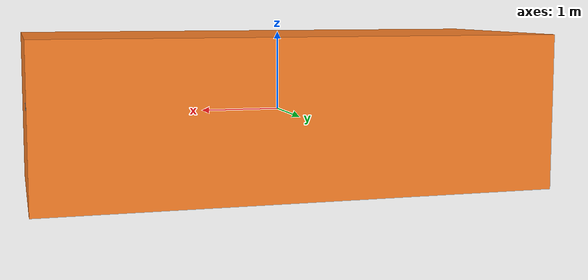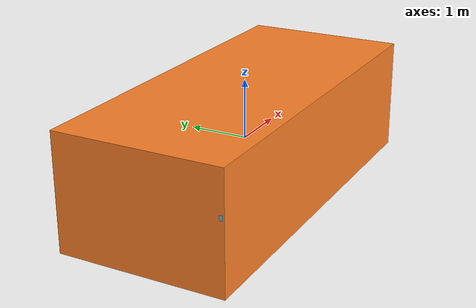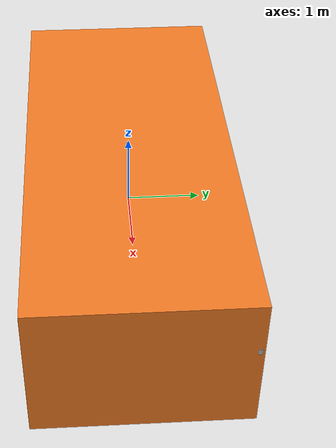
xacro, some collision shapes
<?xml version="1.0"?>
<robot name="cybertruck" xmlns:xacro="http://ros.org/wiki/xacro">

  <xacro:arg name="gpu" default="false"/>
  <xacro:property name="gpu" value="$(arg gpu)" />

  <xacro:property name="robot_namespace" value="/steer_bot"/>

  <xacro:include filename="$(find truck_simulation)/urdf/materials.xacro"/>
  <xacro:include filename="$(find truck_simulation)/urdf/inertials.xacro"/>

  <!-- Gazebo plugins -->
  <gazebo>
    <!-- Load ros_control plugin using the steer_bot_hardware_gazebo
    implementation of the hardware_interface::RobotHW -->
    <plugin name="gazebo_ros_control" filename="libgazebo_ros_control.so">
      <robotNamespace>${robot_namespace}</robotNamespace>
      <robotSimType>steer_bot_hardware_gazebo/SteerBotHardwareGazebo</robotSimType>
      <legacyModeNS>false</legacyModeNS>
    </plugin>
  </gazebo>

  <!-- ****************** ROBOT CONSTANTS *******************************  -->
  <!-- Define the size of the robot's main chassis in meters -->
  <xacro:property name="base_width" value="6.42"/>
  <xacro:property name="base_length" value="2.8"/>
  <xacro:property name="base_height" value="0.96"/>
  <xacro:property name="base_mass" value="5000" />

  <!-- Math constants -->
  <xacro:property name="deg_to_rad" value="0.01745329251994329577"/>

  <!-- Steering link dimensions -->
  <xacro:property name="steer_radius" value="0.05" />
  <xacro:property name="steer_thickness" value="0.02" />
  <xacro:property name="steer_mass" value="10" />

  <!-- Axle positions -->
  <xacro:property name="axle_offset" value="0.05" />
  <xacro:property name="steer_offset" value="0.02" />
  <xacro:property name="steer_height" value="${0.1 + steer_offset}" />

  <!-- Wheel link dimensions -->
  <xacro:property name="wheel_radius" value="0.48" />
  <xacro:property name="wheel_thickness" value="0.54" />
  <xacro:property name="wheel_base" value="2.12" />
  <xacro:property name="wheel_mass" value="500" />

  <!-- Properties -->
  <xacro:property name="steer_effort" value="10.0"/>
  <xacro:property name="steer_velocity" value="5.0"/>
  <xacro:property name="steer_limit_deg" value="45.0"/>

  <link name="base_link">
      <visual>
        <origin xyz="0 0 0" rpy="0 0 1.5707963267949"/>
        <geometry>
          <mesh filename="package://truck_simulation/meshes/cybertruck.stl" scale="0.001 0.001 0.001"/>
        </geometry>
        <material name="Orange"/>
      </visual>

      <collision>
        <geometry>
          <box size="${base_width} ${base_length} ${base_height + 1.0}"/>
        </geometry>
      </collision>

      <xacro:box_inertia m="6000.0" w="${base_width}" d="${base_length}" h="${base_height}"/>
  </link>

  <!-- Colour -->
  <gazebo reference="base_link">
    <material>Gazebo/Orange</material>
  </gazebo>

<!-- Front steer and rear wheel joints required for ackermann_steering_controller -->
  <link name="front_steer_link">
    <visual>
      <origin xyz="0 0 0" rpy="0 0 0"/>
      <geometry>
        <cylinder radius="${steer_radius}" length="${steer_thickness}"/>
      </geometry>
      <material name="Red" />
    </visual>
    <collision>
      <origin xyz="0 0 0" rpy="0 0 0"/>
      <geometry>
        <cylinder radius="${steer_radius}" length="${steer_thickness}"/>
      </geometry>
    </collision>
    <xacro:solid_cylinder_inertial
        rpy="0 0 0" xyz="0 0 0"
        mass="${steer_mass}"
        radius="${steer_radius}" length="${steer_thickness}" />
  </link>

  <joint name="front_steer_joint" type="revolute">
    <parent link="base_link"/>
    <child link="front_steer_link"/>
    <origin xyz="${wheel_base} 0 ${steer_height}" rpy="0 0 0"/>
    <axis xyz="0 0 1"/>
    <limit effort="${steer_effort}"
           lower="${-180.0 * deg_to_rad}" upper="${180.0 * deg_to_rad}"
           velocity="${steer_velocity}"/>
  </joint>

  <transmission name="front_steer_joint_trans">
    <type>transmission_interface/SimpleTransmission</type>
    <actuator name="front_steer_joint_motor">
      <mechanicalReduction>1</mechanicalReduction>
      <hardwareInterface>hardware_interface/PositionJointInterface</hardwareInterface>
    </actuator>
    <joint name="front_steer_joint">
      <hardwareInterface>hardware_interface/PositionJointInterface</hardwareInterface>
    </joint>
  </transmission>

  <gazebo reference="front_steer_link">
    <material>Gazebo/Red</material>
  </gazebo>

<!-- Steerable front right -->
  <link name="front_right_steer_link">
    <visual>
      <origin xyz="0 0 0" rpy="0 0 0"/>
      <geometry>
        <cylinder radius="${steer_radius}" length="${steer_thickness}"/>
      </geometry>
      <material name="blue" />
    </visual>
    <collision>
      <origin xyz="0 0 0" rpy="0 0 0"/>
      <geometry>
        <cylinder radius="${steer_radius}" length="${steer_thickness}"/>
      </geometry>
    </collision>
    <xacro:solid_cylinder_inertial
        rpy="0 0 0" xyz="0 0 0"
        mass="${steer_mass}"
        radius="${steer_radius}" length="${steer_thickness}" />
  </link>

  <joint name="front_right_steer_joint" type="revolute">
    <parent link="base_link"/>
    <child link="front_right_steer_link"/>
    <origin xyz="${wheel_base} -0.75 ${steer_height}" rpy="0 0 0"/>
    <origin xyz="${wheel_base} 0 ${steer_height}" rpy="0 0 0"/>

    <axis xyz="0 0 1"/>
    <limit effort="${steer_effort}"
          lower="${steer_limit_deg * deg_to_rad * -1.0}" upper="${steer_limit_deg * deg_to_rad}"
          velocity="${steer_velocity}"/>
  </joint>

  <link name="front_right_wheel_link">
      <visual>
          <origin xyz="0 0 0" rpy="0 0 ${90 * deg_to_rad}"/>
        <geometry>
          <mesh filename="package://truck_simulation/meshes/wheel1.stl" scale="0.001 0.001 0.001"/>
        </geometry>
        <material name="Black" />
      </visual>
      <collision>
          <origin xyz="0 0 0" rpy="0 0 ${90 * deg_to_rad}"/>
        <geometry>
          <mesh filename="package://truck_simulation/meshes/wheel1.stl" scale="0.001 0.001 0.001"/>
        </geometry>
      </collision>
  </link>

  <joint name="front_right_wheel_joint" type="continuous">
    <parent link="front_right_steer_link"/>
    <child link="front_right_wheel_link"/>
    <origin xyz="0 -0.25 -0.45" rpy="0 0 0"/>
    <axis xyz="0 0 1"/>
  </joint>

  <transmission name="front_right_steer_joint_trans">
    <type>transmission_interface/SimpleTransmission</type>
    <actuator name="front_right_steer_joint_motor">
      <mechanicalReduction>1</mechanicalReduction>
      <hardwareInterface>hardware_interface/PositionJointInterface</hardwareInterface>
    </actuator>
    <joint name="front_right_steer_joint">
      <hardwareInterface>hardware_interface/PositionJointInterface</hardwareInterface>
    </joint>
  </transmission>

  <transmission name="front_right_wheel_joint_trans">
    <type>transmission_interface/SimpleTransmission</type>
    <actuator name="front_right_wheel_joint_motor">
      <mechanicalReduction>1</mechanicalReduction>
      <hardwareInterface>hardware_interface/VelocityJointInterface</hardwareInterface>
    </actuator>
    <joint name="front_right_wheel_joint">
      <hardwareInterface>hardware_interface/VelocityJointInterface</hardwareInterface>
    </joint>
  </transmission>

  <gazebo reference="front_right_wheel_link">
    <material>Gazebo/Black</material>
  </gazebo>

  <gazebo reference="front_right_steer_link">
    <material>Gazebo/Blue</material>
  </gazebo>

<!-- Steerable front left -->
  <link name="front_left_steer_link">
    <visual>
        <origin xyz="0 0 0" rpy="0 0 1.5707963267949"/>
      <geometry>
        <cylinder radius="${steer_radius}" length="${steer_thickness}"/>
      </geometry>
      <material name="blue" />
    </visual>
    <collision>
        <origin xyz="0 0 0" rpy="0 0 1.5707963267949"/>
      <geometry>
        <cylinder radius="${steer_radius}" length="${steer_thickness}"/>
      </geometry>
    </collision>
    <xacro:solid_cylinder_inertial
        rpy="0 0 0" xyz="0 0 0"
        mass="${steer_mass}"
        radius="${steer_radius}" length="${steer_thickness}" />
  </link>

  <joint name="front_left_steer_joint" type="revolute">
    <parent link="base_link"/>
    <child link="front_left_steer_link"/>
    <origin xyz="${wheel_base} 0.75 ${steer_height}" rpy="0 0 0"/>
    <origin xyz="${wheel_base} 0 ${steer_height}" rpy="0 0 0"/>

    <axis xyz="0 0 1"/>
    <limit effort="${steer_effort}"
          lower="${steer_limit_deg * deg_to_rad * -1.0}" upper="${steer_limit_deg * deg_to_rad}"
          velocity="${steer_velocity}"/>
  </joint>

  <link name="front_left_wheel_link">
      <visual>
        <origin xyz="0 0 0" rpy="0 0 ${-90 * deg_to_rad}"/>
        <geometry>
          <mesh filename="package://truck_simulation/meshes/wheel1.stl" scale="0.001 0.001 0.001"/>
        </geometry>
        <material name="Black" />
      </visual>
      <collision>
        <origin xyz="0 0 0" rpy="0 0 ${-90 * deg_to_rad}"/>
        <geometry>
          <mesh filename="package://truck_simulation/meshes/wheel1.stl" scale="0.001 0.001 0.001"/>
        </geometry>
      </collision>
  </link>

  <joint name="front_left_wheel_joint" type="continuous">
    <parent link="front_left_steer_link"/>
    <child link="front_left_wheel_link"/>
    <origin xyz="0 0.25 -0.45" rpy="0 0 0"/>
    <axis xyz="0 0 1"/>
  </joint>

  <transmission name="front_left_steer_joint_trans">
    <type>transmission_interface/SimpleTransmission</type>
    <actuator name="front_left_steer_joint_motor">
      <mechanicalReduction>1</mechanicalReduction>
      <hardwareInterface>hardware_interface/PositionJointInterface</hardwareInterface>
    </actuator>
    <joint name="front_left_steer_joint">
      <hardwareInterface>hardware_interface/PositionJointInterface</hardwareInterface>
    </joint>
  </transmission>

  <transmission name="front_left_wheel_joint_trans">
    <type>transmission_interface/SimpleTransmission</type>
    <actuator name="front_left_wheel_joint_motor">
      <mechanicalReduction>1</mechanicalReduction>
      <hardwareInterface>hardware_interface/VelocityJointInterface</hardwareInterface>
    </actuator>
    <joint name="front_left_wheel_joint">
      <hardwareInterface>hardware_interface/VelocityJointInterface</hardwareInterface>
    </joint>
  </transmission>

  <gazebo reference="front_left_wheel_link">
    <material>Gazebo/Black</material>
  </gazebo>

  <gazebo reference="front_left_steer_link">
    <material>Gazebo/Blue</material>
  </gazebo>

<!-- REAR_WHEEL -->
  <link name="rear_wheel_link">
    <visual>
      <origin xyz="0 0 0" rpy="0 0 0"/>
      <geometry>
        <cylinder radius="${wheel_radius/4}" length="${wheel_thickness/2}"/>
      </geometry>
      <material name="Red" />
    </visual>
    <collision>
      <origin xyz="0 0 0" rpy="0 0 0"/>
      <geometry>
        <cylinder radius="${wheel_radius/4}" length="${wheel_thickness/2}"/>
      </geometry>
    </collision>
    <xacro:solid_cylinder_inertial
        rpy="0 0 0" xyz="0 0 0"
        mass="${wheel_mass}"
        radius="${wheel_radius/4}" length="${wheel_thickness/2}" />
  </link>

  <joint name="rear_wheel_joint" type="continuous">
    <parent link="base_link"/>
    <child link="rear_wheel_link"/>
    <origin xyz="${-wheel_base + 0.05} 0 0" rpy="${-90 * deg_to_rad} 0 0"/>
    <axis xyz="0 0 1"/>
  </joint>

  <transmission name="rear_wheel_joint_trans">
    <type>transmission_interface/SimpleTransmission</type>
    <actuator name="rear_wheel_joint_motor">
      <mechanicalReduction>1</mechanicalReduction>
      <hardwareInterface>hardware_interface/VelocityJointInterface</hardwareInterface>
    </actuator>
    <joint name="rear_wheel_joint">
      <hardwareInterface>hardware_interface/VelocityJointInterface</hardwareInterface>
    </joint>
  </transmission>

  <gazebo reference="rear_wheel_link">
    <material>Gazebo/Red</material>
  </gazebo>

<!-- left_front_wheel -->

<!-- left_rear_wheel -->

<!-- right_front_wheel -->

<!-- right_rear_wheel -->

<!-- *********************** LIDAR SETUP **********************************  -->
  <xacro:include filename="$(find robosense_description)/urdf/RS-16.urdf.xacro"/>
  <xacro:RS-16 parent="base_link" name="robosense_F" topic="robosense_F" hz="20" samples="900" gpu="${gpu}">
    <origin xyz="3.165 1.345 .25" rpy="0.0 3.14 -1.5707" />
  </xacro:RS-16>

  <xacro:include filename="$(find robosense_description)/urdf/RS-16.urdf.xacro"/>
  <xacro:RS-16 parent="base_link" name="robosense_B" topic="robosense_B" hz="20" samples="900" gpu="${gpu}">
    <origin xyz="-3.165 -1.345 .25" rpy="0.0 3.14 1.5707" />
  </xacro:RS-16>

</robot>

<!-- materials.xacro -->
<!--  xacro macros for robot materials.
 -->
<robot name="materials" xmlns:xacro="http://wiki.ros.org/xacro">
   <material name="red">
        <color rgba="0.8 0 0 1"/>
    </material>

    <material name="green">
        <color rgba="0 0.8 0 1"/>
    </material>

    <material name="blue">
        <color rgba="0 0 0.8 1"/>
    </material>

    <material name="yellow">
        <color rgba="0.8 0.8 0 1"/>
    </material>

    <material name="orange">
        <color rgba="0.8 0.25 0 1"/>
    </material>

    <material name="dark_gray">
        <color rgba="0.5 0.5 0.5 1"/>
    </material>

    <material name="gray">
        <color rgba="0.753 0.753 0.753 1"/>
    </material>

    <material name="silver">
        <color rgba="0.88 0.88 0.88 1"/>
    </material>

    <material name="Black">
        <color rgba="${0/255} ${0/255} ${0/255} 0.4"/>
    </material>

    <material name="White">
        <color rgba="${255/255} ${255/255} ${255/255} 1.0"/>
    </material>

    <material name="Red">
        <color rgba="${255/255} ${0/255} ${0/255} 1.0"/>
    </material>

    <material name="Grey">
        <color rgba="${50/255} ${50/255} ${50/255} 1.0"/>
    </material>

    <material name="Orange">
        <color rgba="${255/255} ${130/255} ${40/255} 1.0"/>
    </material>
    <material name="Yellow">
        <color rgba="${255/255} ${255/255} ${0/255} 0.4"/>
    </material>
</robot>

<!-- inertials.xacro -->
<!--  xacro macros for inertials.

    Define xacro macros for math constants and inertials:

    - solid cuboid
    - solid cylinder
    - null (a placeholder inertial for logical link elements)
 -->
<robot name="inertials" xmlns:xacro="http://wiki.ros.org/xacro">

    <!-- Math constants -->
    <xacro:property name="math_pi"        value="3.141592653589793" />
    <xacro:property name="math_pi_over_2" value="1.5707963267948966" />
    <xacro:property name="math_pi_over_4" value="0.785398163397448" />

    <!-- Inertial for solid cuboid with dimensions x y z  -->
    <xacro:macro name="solid_cuboid_inertial" params="rpy xyz mass x y z">
        <inertial>
            <origin rpy="${rpy}" xyz="${xyz}"/>
            <mass value="${mass}" />
            <inertia
                ixx="${mass * (y * y + z * z) / 12.0}" ixy="0.0" ixz="0.0"
                iyy="${mass * (x * x + z * z) / 12.0}" iyz="0.0"
                izz="${mass * (x * x + y * y) / 12.0}" />
        </inertial>
    </xacro:macro>

    <!-- Inertial for solid cylinder with radius and length aligned to z-axis  -->
    <xacro:macro name="solid_cylinder_inertial" params="rpy xyz mass radius length">
        <inertial>
            <origin rpy="${rpy}" xyz="${xyz}"/>
            <mass value="${mass}" />
            <inertia
                ixx="${mass * (3.0 * radius * radius + length * length) / 12.0}" ixy="0.0" ixz="0.0"
                iyy="${mass * (3.0 * radius * radius + length * length) / 12.0}" iyz="0.0"
                izz="${mass * (radius * radius) / 2.0}" />
        </inertial>
    </xacro:macro>

    <!-- A null inertial - used in placeholder links to esure the model will work in Gazebo -->
    <xacro:macro name="null_inertial">
        <inertial>
            <mass value="0.001"/>
            <inertia ixx="0.001" ixy="0" ixz="0" iyy="0.001" iyz="0" izz="0.001"/>
        </inertial>
    </xacro:macro>

    <!-- Define intertial property macros  -->
    <xacro:macro name="box_inertia" params="m w h d">
        <inertial>
            <origin xyz="0 0 0" rpy="${pi/2} 0 ${pi/2}"/>
            <mass value="${m}"/>
            <inertia ixx="${(m/12) * (h*h + d*d)}" ixy="0.0" ixz="0.0" iyy="${(m/12) * (w*w + d*d)}" iyz="0.0" izz="${(m/12) * (w*w + h*h)}"/>
        </inertial>
    </xacro:macro>
</robot>

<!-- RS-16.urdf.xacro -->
<robot xmlns:xacro="http://www.ros.org/wiki/xacro" name="RS-16">
  <xacro:property name="M_PI" value="3.1415926535897931" />
  <xacro:macro name="RS-16" params="*origin parent:=base_link name:=robosense topic:=/robosense_points hz:=20 lasers:=16 samples:=360 collision_range:=0.4 min_range:=0.4 max_range:=150.0 noise:=0.008 min_angle:=-${M_PI} max_angle:=${M_PI} gpu:=false">

    <joint name="${name}_base_mount_joint" type="fixed">
      <xacro:insert_block name="origin" />
      <parent link="${parent}"/>
      <child link="${name}_base_link"/>
    </joint>

    <link name="${name}_base_link">
      <inertial>
        <mass value="0.87"/>
        <origin xyz="0 0 0"/>
        <inertia ixx="0.001094695" ixy="0" ixz="0"
          iyy="0.001094695" iyz="0"
          izz="0.001245079"/>
      </inertial>
      <visual>
        <origin rpy="0 0 0" xyz="0 0 0"/>
        <geometry>
          <cylinder radius="0.0535" length="0.0817"/>
        </geometry>
      </visual>
      <collision>
        <origin rpy="0 0 0" xyz="0 0 0"/>
        <geometry>
          <cylinder radius="0.0535" length="0.0817"/>
        </geometry>
      </collision>
    </link>

    <joint name="${name}_base_scan_joint" type="fixed" >
      <origin xyz="0 0 0.039" rpy="0 0 0" />
      <parent link="${name}_base_link" />
      <child link="${name}"/>
    </joint>

    <link name="${name}">
      <inertial>
        <mass value="0.01"/>
        <origin xyz="0 0 0"/>
        <inertia ixx="1e-7" ixy="0" ixz="0" iyy="1e-7" iyz="0" izz="1e-7"/>
      </inertial>
    </link>

    <!-- Gazebo requires the robosense_gazebo_plugins package -->
    <gazebo reference="${name}">
      <xacro:if value="${gpu}">
        <sensor type="gpu_ray" name="${name}-RS16">
          <pose>0 0 0 0 0 0</pose>
          <visualize>false</visualize>
          <update_rate>${hz}</update_rate>
          <ray>
            <scan>
              <horizontal>
                <samples>${samples}</samples>
                <resolution>1</resolution>
                <min_angle>${min_angle}</min_angle>
                <max_angle>${max_angle}</max_angle>
              </horizontal>
              <vertical>
                <samples>${lasers}</samples>
                <resolution>1</resolution>
                <min_angle>-${15.0*M_PI/180.0}</min_angle>
                <max_angle> ${15.0*M_PI/180.0}</max_angle>
              </vertical>
            </scan>
            <range>
              <min>${collision_range}</min>
              <max>${max_range}</max>
              <resolution>0.001</resolution>
            </range>
            <noise>
              <type>gaussian</type>
              <mean>0.0</mean>
              <stddev>0.0</stddev>
            </noise>
          </ray>
          <plugin name="gazebo_ros_laser_controller" filename="libgazebo_ros_robosense_laser.so">
            <ros>
              <namespace>/${name}</namespace>
              <remapping>~/out:=${topic}</remapping>
            </ros>
            <tf_prefix>${tf_prefix}</tf_prefix>
            <frameName>${name}</frameName>
            <min_range>${min_range}</min_range>
            <max_range>${max_range}</max_range>
            <gaussian_noise>${noise}</gaussian_noise>
          </plugin>
        </sensor>
      </xacro:if>
      <xacro:unless value="${gpu}">
        <sensor type="ray" name="${name}-RS16">
          <pose>0 0 0 0 0 0</pose>
          <always_on>true</always_on>
          <visualize>false</visualize>
          <update_rate>${hz}</update_rate>
          <ray>
            <scan>
              <horizontal>
                <samples>${samples}</samples>
                <resolution>1</resolution>
                <min_angle>${min_angle}</min_angle>
                <max_angle>${max_angle}</max_angle>
              </horizontal>
              <vertical>
                <samples>${lasers}</samples>
                <resolution>1</resolution>
                <min_angle>-${15.0*M_PI/180.0}</min_angle>
                <max_angle> ${15.0*M_PI/180.0}</max_angle>
              </vertical>
            </scan>
            <range>
              <min>${collision_range}</min>
              <max>${max_range+1}</max>
              <resolution>0.001</resolution>
            </range>
            <noise>
              <type>gaussian</type>
              <mean>0.0</mean>
              <stddev>0.0</stddev>
            </noise>
          </ray>
          <plugin name="gazebo_ros_laser_controller" filename="libgazebo_ros_robosense_laser.so">
            <ros>
              <namespace>/${name}</namespace>
              <remapping>~/out:=${topic}</remapping>
            </ros>
            <frameName>${name}</frameName>
            <min_range>${min_range}</min_range>
            <max_range>${max_range}</max_range>
            <gaussian_noise>${noise}</gaussian_noise>
          </plugin>
        </sensor>
      </xacro:unless>
    </gazebo>

  </xacro:macro>
</robot>
